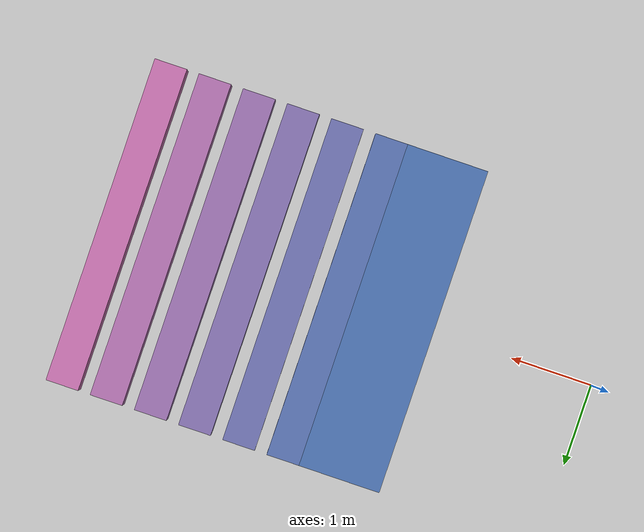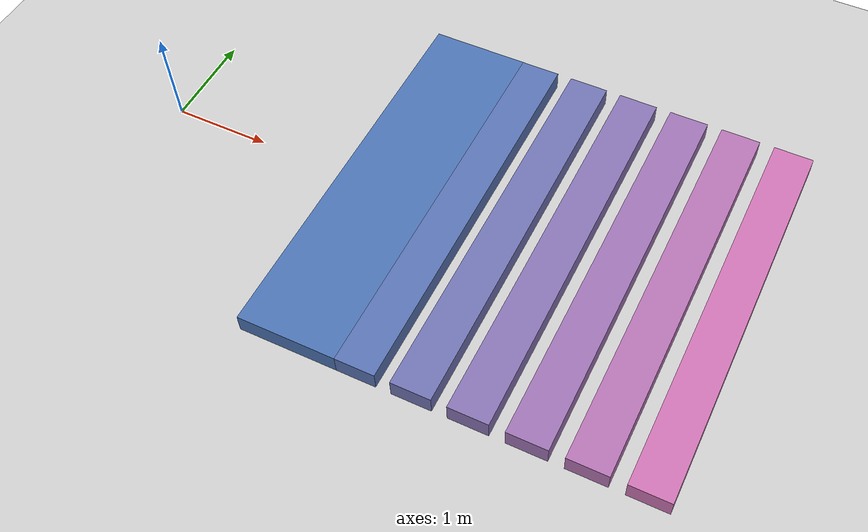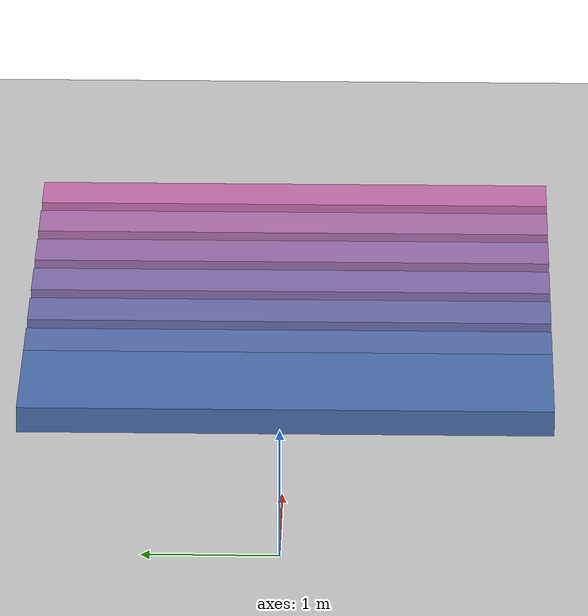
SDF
<?xml version="1.0"?>
<sdf version="1.6">
  <!-- We use a custom world for the rrbot so that the camera angle is launched correctly -->

  <world name="default">

    <plugin
      filename="gz-sim-physics-system"
      name="gz::sim::systems::Physics">
    </plugin>
    <plugin
      filename="gz-sim-air-pressure-system"
      name="gz::sim::systems::AirPressure">
    </plugin>
    <plugin
      filename="gz-sim-altimeter-system"
      name="gz::sim::systems::Altimeter">
    </plugin>
    <plugin
      filename="gz-sim-imu-system"
      name="gz::sim::systems::Imu">
    </plugin>
    <plugin
      filename="gz-sim-sensors-system"
      name="gz::sim::systems::Sensors">
      <render_engine>ogre2</render_engine>
    </plugin>
    <plugin
      filename="gz-sim-magnetometer-system"
      name="gz::sim::systems::Magnetometer">
    </plugin>
    <plugin
      filename="gz-sim-forcetorque-system"
      name="gz::sim::systems::ForceTorque">
    </plugin>
    <plugin
      filename="gz-sim-user-commands-system"
      name="gz::sim::systems::UserCommands">
    </plugin>
    <plugin
      filename="gz-sim-scene-broadcaster-system"
      name="gz::sim::systems::SceneBroadcaster">
    </plugin>
    <gravity>0 0 -9.81</gravity>

    <light type="directional" name="sun">
      <cast_shadows>true</cast_shadows>
      <pose>0 0 10 0 0 0</pose>
      <diffuse>0.8 0.8 0.8 1</diffuse>
      <specular>0.2 0.2 0.2 1</specular>
      <attenuation>
        <range>1000</range>
        <constant>0.9</constant>
        <linear>0.01</linear>
        <quadratic>0.001</quadratic>
      </attenuation>
      <direction>-0.5 0.1 -0.9</direction>
    </light>

    <model name="ground_plane">
      <static>true</static>
      <link name="link">
        <collision name="collision">
          <geometry>
            <plane>
              <normal>0 0 1</normal>
              <size>100 100</size>
            </plane>
          </geometry>
        </collision>
        <visual name="visual">
          <geometry>
            <plane>
              <normal>0 0 1</normal>
              <size>100 100</size>
            </plane>
          </geometry>
          <material>
            <ambient>0.8 0.8 0.8 1</ambient>
            <diffuse>0.8 0.8 0.8 1</diffuse>
            <specular>0.8 0.8 0.8 1</specular>
          </material>
        </visual>
      </link>
    </model>

    <!-- Focus camera on tall pendulum -->
    <gui fullscreen='0'>
      <camera name='user_camera'>
        <pose>4.927360 -4.376610 3.740080 0.000000 0.275643 2.356190</pose>
        <view_controller>orbit</view_controller>
      </camera>
    </gui>

    <physics name="update_rate" type="ode">
      <real_time_update_rate>1000</real_time_update_rate>
      <max_step_size>0.001</max_step_size>
      <max_contacts>10</max_contacts>
      <bullet>
        <solver>
          <iters>100</iters>
          <sor>1.55</sor>
        </solver>
        <constraints>
          <contact_surface_layer>0.2</contact_surface_layer>
          <cfm>0.005</cfm>
          <erp>0.2</erp>
        </constraints>
      </bullet>
      <ode>
        <solver>
          <iters>50</iters>
          <sor>1.20</sor>
        </solver>
        <constraints>
          <contact_surface_layer>0.0002</contact_surface_layer>
          <contact_max_correcting_vel>500</contact_max_correcting_vel>
          <cfm>0.000001</cfm>
          <erp>0.3</erp>
        </constraints>
      </ode>
    </physics>

      <model name="gap_field">
      <static>true</static>
      <pose>0 0 0 0 0 0</pose>
      <link name="bars_link">
        <collision name="approach_00_collision">
          <pose>2.5000 0 0.1000 0 0 0</pose>
          <geometry><box><size>1.0000 4.00 0.2000</size></box></geometry>
          <surface><friction><ode><mu>1.0</mu><mu2>1.0</mu2></ode></friction></surface>
        </collision>
        <visual name="approach_00_visual">
          <pose>2.5000 0 0.1000 0 0 0</pose>
          <geometry><box><size>1.0000 4.00 0.2000</size></box></geometry>
          <material><ambient>0.30 0.45 0.7 1</ambient><diffuse>0.30 0.45 0.7 1</diffuse></material>
        </visual>
        <collision name="bar_00_collision">
          <pose>3.2000 0 0.1000 0 0 0</pose>
          <geometry><box><size>0.4000 4.00 0.2000</size></box></geometry>
          <surface><friction><ode><mu>1.0</mu><mu2>1.0</mu2></ode></friction></surface>
        </collision>
        <visual name="bar_00_visual">
          <pose>3.2000 0 0.1000 0 0 0</pose>
          <geometry><box><size>0.4000 4.00 0.2000</size></box></geometry>
          <material><ambient>0.35 0.45 0.7 1</ambient><diffuse>0.35 0.45 0.7 1</diffuse></material>
        </visual>
        <collision name="bar_01_collision">
          <pose>3.7500 0 0.1000 0 0 0</pose>
          <geometry><box><size>0.4000 4.00 0.2000</size></box></geometry>
          <surface><friction><ode><mu>1.0</mu><mu2>1.0</mu2></ode></friction></surface>
        </collision>
        <visual name="bar_01_visual">
          <pose>3.7500 0 0.1000 0 0 0</pose>
          <geometry><box><size>0.4000 4.00 0.2000</size></box></geometry>
          <material><ambient>0.44 0.45 0.7 1</ambient><diffuse>0.44 0.45 0.7 1</diffuse></material>
        </visual>
        <collision name="bar_02_collision">
          <pose>4.3000 0 0.1000 0 0 0</pose>
          <geometry><box><size>0.4000 4.00 0.2000</size></box></geometry>
          <surface><friction><ode><mu>1.0</mu><mu2>1.0</mu2></ode></friction></surface>
        </collision>
        <visual name="bar_02_visual">
          <pose>4.3000 0 0.1000 0 0 0</pose>
          <geometry><box><size>0.4000 4.00 0.2000</size></box></geometry>
          <material><ambient>0.53 0.45 0.7 1</ambient><diffuse>0.53 0.45 0.7 1</diffuse></material>
        </visual>
        <collision name="bar_03_collision">
          <pose>4.8500 0 0.1000 0 0 0</pose>
          <geometry><box><size>0.4000 4.00 0.2000</size></box></geometry>
          <surface><friction><ode><mu>1.0</mu><mu2>1.0</mu2></ode></friction></surface>
        </collision>
        <visual name="bar_03_visual">
          <pose>4.8500 0 0.1000 0 0 0</pose>
          <geometry><box><size>0.4000 4.00 0.2000</size></box></geometry>
          <material><ambient>0.62 0.45 0.7 1</ambient><diffuse>0.62 0.45 0.7 1</diffuse></material>
        </visual>
        <collision name="bar_04_collision">
          <pose>5.4000 0 0.1000 0 0 0</pose>
          <geometry><box><size>0.4000 4.00 0.2000</size></box></geometry>
          <surface><friction><ode><mu>1.0</mu><mu2>1.0</mu2></ode></friction></surface>
        </collision>
        <visual name="bar_04_visual">
          <pose>5.4000 0 0.1000 0 0 0</pose>
          <geometry><box><size>0.4000 4.00 0.2000</size></box></geometry>
          <material><ambient>0.71 0.45 0.7 1</ambient><diffuse>0.71 0.45 0.7 1</diffuse></material>
        </visual>
        <collision name="bar_05_collision">
          <pose>5.9500 0 0.1000 0 0 0</pose>
          <geometry><box><size>0.4000 4.00 0.2000</size></box></geometry>
          <surface><friction><ode><mu>1.0</mu><mu2>1.0</mu2></ode></friction></surface>
        </collision>
        <visual name="bar_05_visual">
          <pose>5.9500 0 0.1000 0 0 0</pose>
          <geometry><box><size>0.4000 4.00 0.2000</size></box></geometry>
          <material><ambient>0.80 0.45 0.7 1</ambient><diffuse>0.80 0.45 0.7 1</diffuse></material>
        </visual>
      </link>
    </model>
</world>
</sdf>
